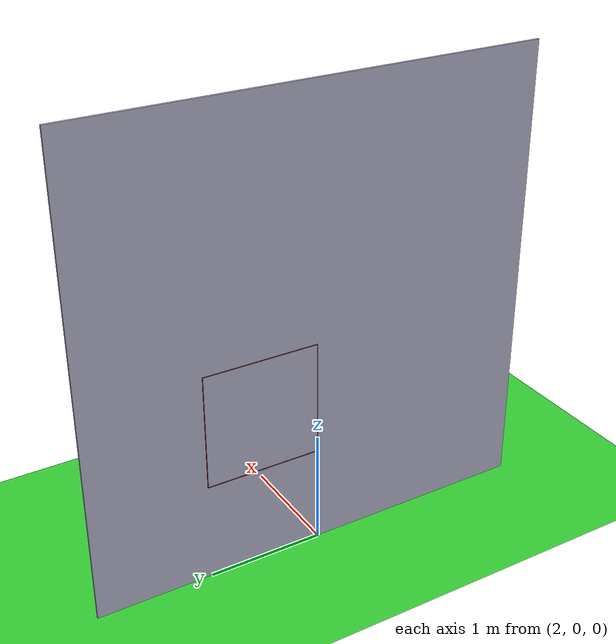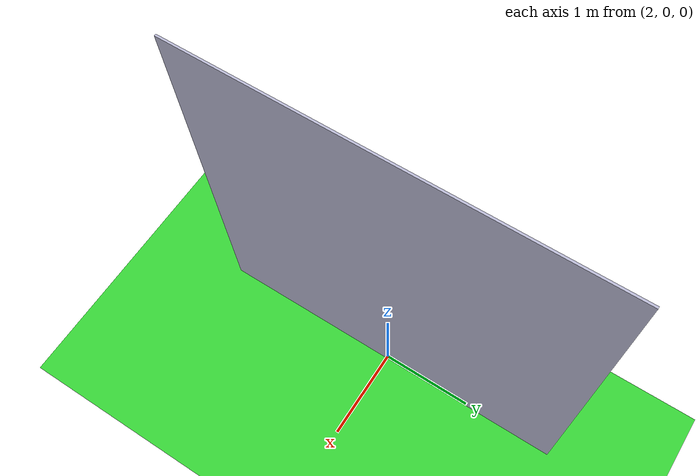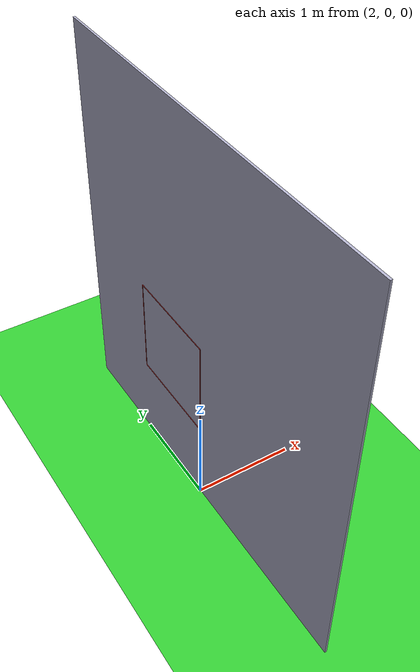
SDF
<sdf version="1.5">
 <world name="mrsim">
  <physics name="1ms" type="unused">
   <max_step_size>0.002000</max_step_size>
   <real_time_factor>1.000000</real_time_factor>
   <real_time_update_rate>500.000000</real_time_update_rate>
   <gravity>0 0 -9.81</gravity>
   <magnetic_field>23.816e-6 -0.41e-6 -39.829e-6</magnetic_field>
  </physics>
  <light type="directional" name="sun">
   <pose>0 0 10 0 0 0</pose>
   <diffuse>0.8 0.8 0.8 1</diffuse>
   <specular>0.2 0.2 0.2 1</specular>
   <attenuation>
    <range>1000</range>
    <constant>0.9</constant>
    <linear>0.01</linear>
    <quadratic>0.001</quadratic>
   </attenuation>
   <direction>0.5 0.1 -0.9</direction>
  </light>
  <model name="ground_plane">
   <static>true</static>
   <link name="link">
    <collision name="collision">
     <geometry><plane><normal>0 0 1.0</normal><size>100 100</size></plane></geometry>
    </collision>
    <visual name="visual">
     <geometry><plane><normal>0 0 1.0</normal><size>100 100</size></plane></geometry>
     <material>
      <ambient>0.2 0.8 0.2 1</ambient>
      <diffuse>0.2 0.8 0.2 1</diffuse>
      <specular>0.2 0.8 0.2 1</specular>
     </material>
    </visual>
   </link>
  </model>
  <model name="contact_wall">
   <static>true</static>
   <pose>2.01 0 2.0 0 0 0</pose>
   <link name="wall">
    <collision name="collision">
     <geometry><box><size>0.02 4.0 4.0</size></box></geometry>
     <surface>
      <friction><ode><mu>0.3</mu><mu2>0.3</mu2></ode></friction>
      <contact><ode><kp>500.0</kp><kd>50.0</kd><max_vel>0.0</max_vel><min_depth>0.001</min_depth></ode></contact>
     </surface>
    </collision>
    <visual name="visual">
     <geometry><box><size>0.02 4.0 4.0</size></box></geometry>
     <material>
      <ambient>0.7 0.7 0.8 1</ambient>
      <diffuse>0.7 0.7 0.8 1</diffuse>
      <specular>0.3 0.3 0.4 1</specular>
     </material>
    </visual>
   </link>
  </model>
  <model name="wall_frame">
   <static>true</static>
   <link name="frame">
    <collision name="ridge_bottom">
     <pose>1.9975 0.5 0.875 0 0 0</pose>
     <geometry><box><size>0.005 1.005 0.005</size></box></geometry>
    </collision>
    <visual name="ridge_bottom_vis">
     <pose>1.9975 0.5 0.875 0 0 0</pose>
     <geometry><box><size>0.005 1.005 0.005</size></box></geometry>
     <material><ambient>0.6 0.1 0.1 1</ambient><diffuse>0.7 0.15 0.15 1</diffuse></material>
    </visual>
    <collision name="ridge_top">
     <pose>1.9975 0.5 1.875 0 0 0</pose>
     <geometry><box><size>0.005 1.005 0.005</size></box></geometry>
    </collision>
    <visual name="ridge_top_vis">
     <pose>1.9975 0.5 1.875 0 0 0</pose>
     <geometry><box><size>0.005 1.005 0.005</size></box></geometry>
     <material><ambient>0.6 0.1 0.1 1</ambient><diffuse>0.7 0.15 0.15 1</diffuse></material>
    </visual>
    <collision name="ridge_left">
     <pose>1.9975 0 1.375 0 0 0</pose>
     <geometry><box><size>0.005 0.005 0.995</size></box></geometry>
    </collision>
    <visual name="ridge_left_vis">
     <pose>1.9975 0 1.375 0 0 0</pose>
     <geometry><box><size>0.005 0.005 0.995</size></box></geometry>
     <material><ambient>0.6 0.1 0.1 1</ambient><diffuse>0.7 0.15 0.15 1</diffuse></material>
    </visual>
    <collision name="ridge_right">
     <pose>1.9975 1 1.375 0 0 0</pose>
     <geometry><box><size>0.005 0.005 0.995</size></box></geometry>
    </collision>
    <visual name="ridge_right_vis">
     <pose>1.9975 1 1.375 0 0 0</pose>
     <geometry><box><size>0.005 0.005 0.995</size></box></geometry>
     <material><ambient>0.6 0.1 0.1 1</ambient><diffuse>0.7 0.15 0.15 1</diffuse></material>
    </visual>
   </link>
  </model>
  <plugin name="gz::sim::systems::Sensors" filename="gz-sim-sensors-system">
   <render_engine>ogre2</render_engine>
  </plugin>
  <plugin name="gz::sim::systems::Contact" filename="gz-sim-contact-system"/>
  <plugin name="optitrack" filename="optitrack-gazebo.so">
   <hz>100</hz>
   <port>1509</port>
   <publish><link>hr6::base</link><name>HR_6</name></publish>
  </plugin>
 </world>
</sdf>
